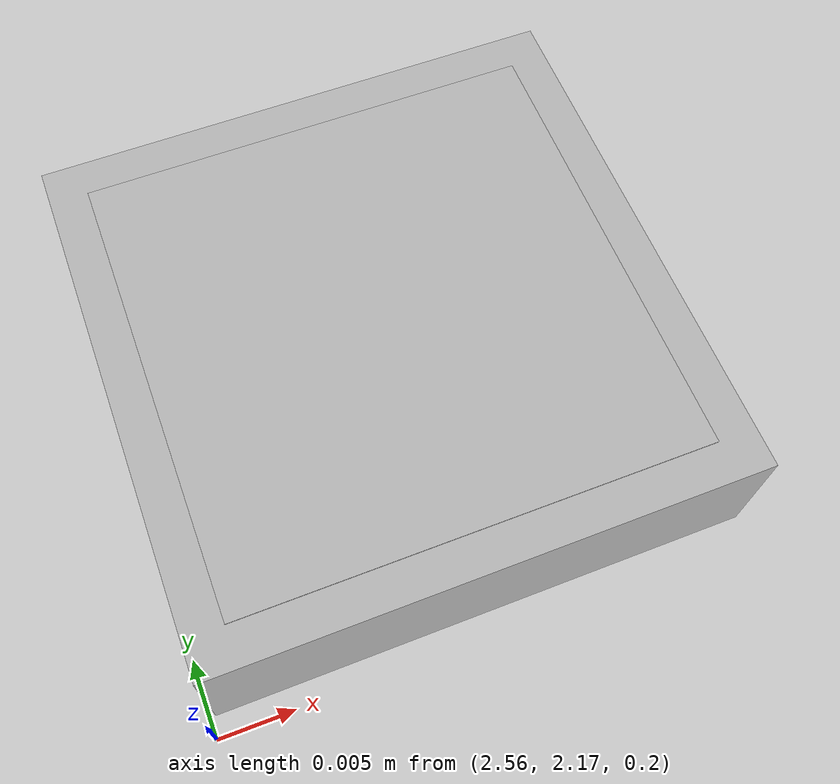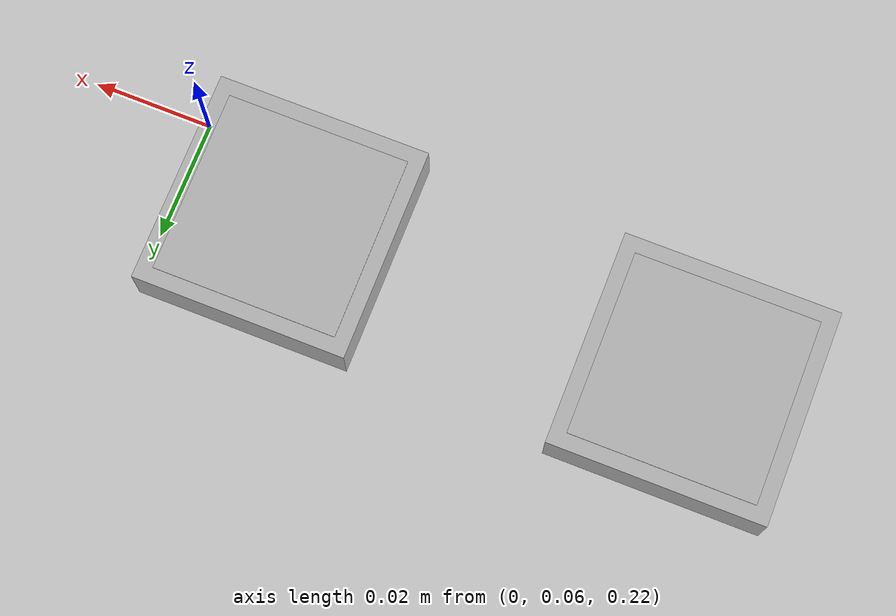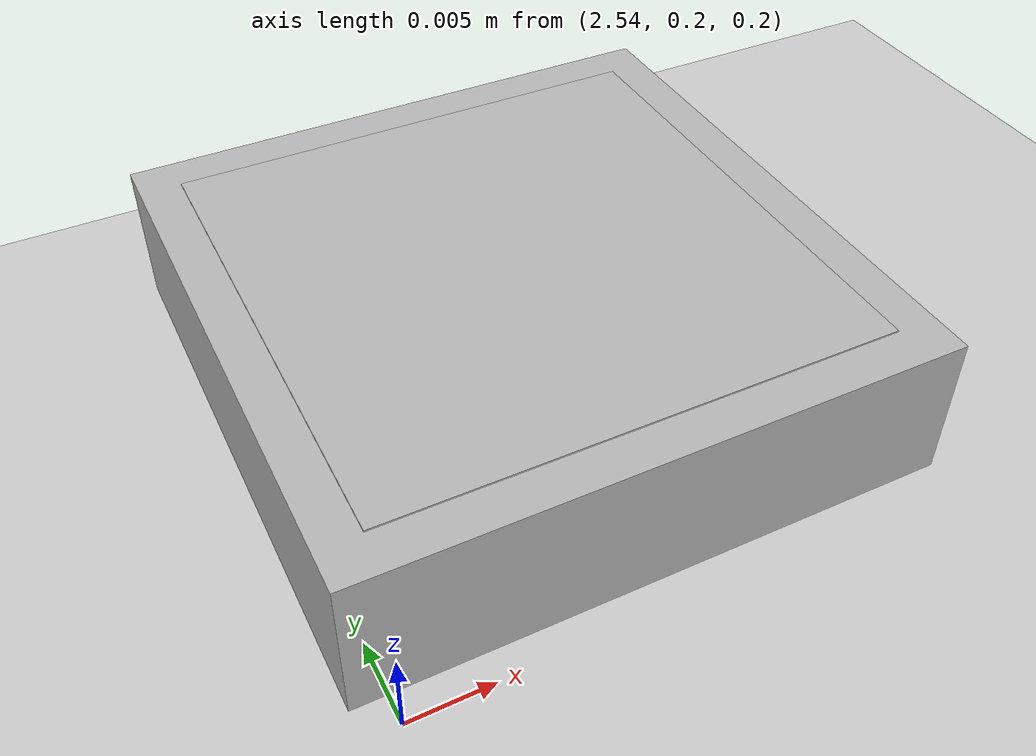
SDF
<sdf version="1.7">
 <world name="default">
  <light name="sun" type="directional">
   <pose>0 0 10 0 -0 0</pose>
   <diffuse>0.8 0.8 0.8 1</diffuse>
   <specular>0.2 0.2 0.2 1</specular>
   <attenuation>
    <range>1000</range>
    <constant>0.9</constant>
    <linear>0.01</linear>
    <quadratic>0.001</quadratic>
   </attenuation>
   <direction>-0.5 0.1 -0.9</direction>
   <spot><inner_angle>0</inner_angle><outer_angle>0</outer_angle><falloff>0</falloff></spot>
  </light>
  <model name="ground_plane">
   <static>1</static>
   <link name="link">
    <collision name="collision">
     <geometry><plane><normal>0 0 1</normal><size>100 100</size></plane></geometry>
     <surface>
      <contact><collide_bitmask>65535</collide_bitmask></contact>
      <friction><ode><mu>100</mu><mu2>50</mu2></ode></friction>
     </surface>
    </collision>
    <visual name="visual">
     <cast_shadows>0</cast_shadows>
     <geometry><plane><normal>0 0 1</normal><size>100 100</size></plane></geometry>
     <material>
      <script><uri>file://media/materials/scripts/gazebo.material</uri><name>Gazebo/Grey</name></script>
     </material>
    </visual>
   </link>
  </model>
  <gravity>0 0 -9.8</gravity>
  <magnetic_field>6e-06 2.3e-05 -4.2e-05</magnetic_field>
  <atmosphere type="adiabatic"/>
  <physics type="ode">
   <max_step_size>0.001</max_step_size>
   <real_time_factor>1</real_time_factor>
   <real_time_update_rate>1000</real_time_update_rate>
  </physics>
  <scene><ambient>0.4 0.4 0.4 1</ambient><background>0.7 0.7 0.7 1</background><shadows>1</shadows></scene>
  <spherical_coordinates>
   <surface_model>EARTH_WGS84</surface_model>
   <latitude_deg>0</latitude_deg>
   <longitude_deg>0</longitude_deg>
   <elevation>0</elevation>
   <heading_deg>0</heading_deg>
  </spherical_coordinates>
  <light name="charge_light" type="spot">
   <pose>1.27013 2.10957 1 0 -0 0</pose>
   <diffuse>1 0 0 1</diffuse>
   <specular>1 0 0 1</specular>
   <direction>0 0 -1</direction>
   <attenuation><range>0</range><constant>0</constant><linear>0</linear><quadratic>0</quadratic></attenuation>
   <cast_shadows>0</cast_shadows>
   <spot><inner_angle>0.6</inner_angle><outer_angle>2</outer_angle><falloff>1</falloff></spot>
  </light>
  <model name="ar_track_3">
   <static>0</static>
   <link name="link">
    <inertial>
     <mass>0.1</mass>
     <inertia><ixx>3e-05</ixx><ixy>0</ixy><ixz>0</ixz><iyy>3e-05</iyy><iyz>0</iyz><izz>3e-05</izz></inertia>
    </inertial>
    <collision name="collision">
     <geometry><box><size>0.035 0.035 0.01</size></box></geometry>
     <surface><friction><ode><mu>1</mu><mu2>1</mu2></ode></friction></surface>
    </collision>
    <visual name="visual_1">
     <cast_shadows>0</cast_shadows>
     <geometry><box><size>0.035 0.035 0.009</size></box></geometry>
    </visual>
    <visual name="visual_2">
     <pose>0 0 0.0041 0 -0 0</pose>
     <cast_shadows>0</cast_shadows>
     <geometry><box><size>0.03 0.03 0.001</size></box></geometry>
     <material>
      <script>
       <uri>model://ar_track_3/materials/scripts</uri>
       <uri>model://ar_track_3/materials/textures</uri>
       <name>reinovo/ar_track_3</name>
      </script>
     </material>
    </visual>
   </link>
   <pose>-0.019495 0.073338 0.229992 -0.000104 -0 -0.00092</pose>
  </model>
  <model name="ar_track_9">
   <static>0</static>
   <link name="link">
    <inertial>
     <mass>0.1</mass>
     <inertia><ixx>3e-05</ixx><ixy>0</ixy><ixz>0</ixz><iyy>3e-05</iyy><iyz>0</iyz><izz>3e-05</izz></inertia>
    </inertial>
    <collision name="collision">
     <geometry><box><size>0.035 0.035 0.01</size></box></geometry>
     <surface><friction><ode><mu>1</mu><mu2>1</mu2></ode></friction></surface>
    </collision>
    <visual name="visual_1">
     <cast_shadows>0</cast_shadows>
     <geometry><box><size>0.035 0.035 0.009</size></box></geometry>
    </visual>
    <visual name="visual_2">
     <pose>0 0 0.0041 0 -0 0</pose>
     <cast_shadows>0</cast_shadows>
     <geometry><box><size>0.03 0.03 0.001</size></box></geometry>
     <material>
      <script>
       <uri>model://ar_track_9/materials/scripts</uri>
       <uri>model://ar_track_9/materials/textures</uri>
       <name>reinovo/ar_track_9</name>
      </script>
     </material>
    </visual>
   </link>
   <pose>-0.087258 0.074289 0.229995 -0.000222 -1e-06 0.000508</pose>
  </model>
  <model name="ar_track_4">
   <static>0</static>
   <link name="link">
    <inertial>
     <mass>0.1</mass>
     <inertia><ixx>3e-05</ixx><ixy>0</ixy><ixz>0</ixz><iyy>3e-05</iyy><iyz>0</iyz><izz>3e-05</izz></inertia>
    </inertial>
    <collision name="collision">
     <geometry><box><size>0.035 0.035 0.01</size></box></geometry>
     <surface><friction><ode><mu>1</mu><mu2>1</mu2></ode></friction></surface>
    </collision>
    <visual name="visual_1">
     <cast_shadows>0</cast_shadows>
     <geometry><box><size>0.035 0.035 0.009</size></box></geometry>
    </visual>
    <visual name="visual_2">
     <pose>0 0 0.0041 0 -0 0</pose>
     <cast_shadows>0</cast_shadows>
     <geometry><box><size>0.03 0.03 0.001</size></box></geometry>
     <material>
      <script>
       <uri>model://ar_track_4/materials/scripts</uri>
       <uri>model://ar_track_4/materials/textures</uri>
       <name>reinovo/ar_track_4</name>
      </script>
     </material>
    </visual>
   </link>
   <pose>2.57788 2.18877 0.20499 2e-06 0 -3.4e-05</pose>
  </model>
  <model name="ar_track_5">
   <static>0</static>
   <link name="link">
    <inertial>
     <mass>0.1</mass>
     <inertia><ixx>3e-05</ixx><ixy>0</ixy><ixz>0</ixz><iyy>3e-05</iyy><iyz>0</iyz><izz>3e-05</izz></inertia>
    </inertial>
    <collision name="collision">
     <geometry><box><size>0.035 0.035 0.01</size></box></geometry>
     <surface><friction><ode><mu>1</mu><mu2>1</mu2></ode></friction></surface>
    </collision>
    <visual name="visual_1">
     <cast_shadows>0</cast_shadows>
     <geometry><box><size>0.035 0.035 0.009</size></box></geometry>
    </visual>
    <visual name="visual_2">
     <pose>0 0 0.0041 0 -0 0</pose>
     <cast_shadows>0</cast_shadows>
     <geometry><box><size>0.03 0.03 0.001</size></box></geometry>
     <material>
      <script>
       <uri>model://ar_track_5/materials/scripts</uri>
       <uri>model://ar_track_5/materials/textures</uri>
       <name>reinovo/ar_track_5</name>
      </script>
     </material>
    </visual>
   </link>
   <pose>2.55537 0.218961 0.204995 2e-06 0.000237 0.000112</pose>
  </model>
 </world>
</sdf>
